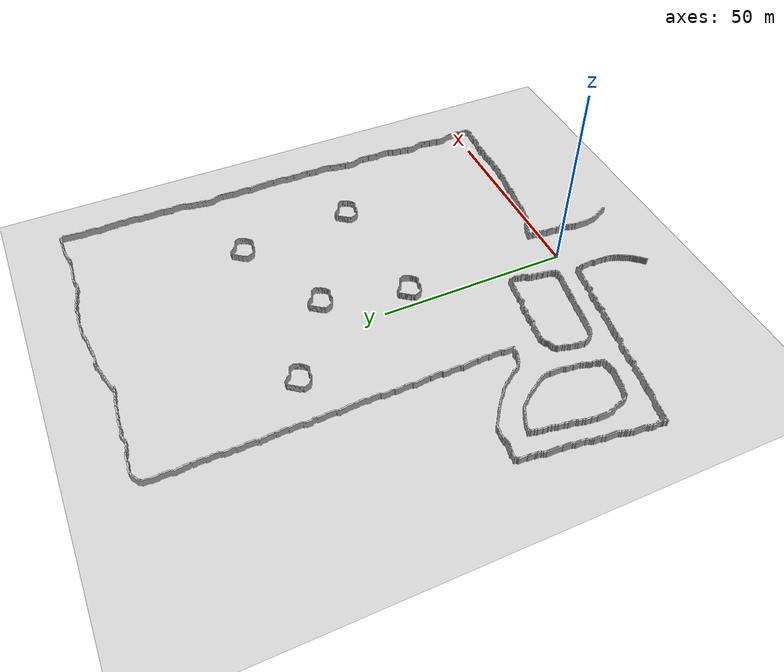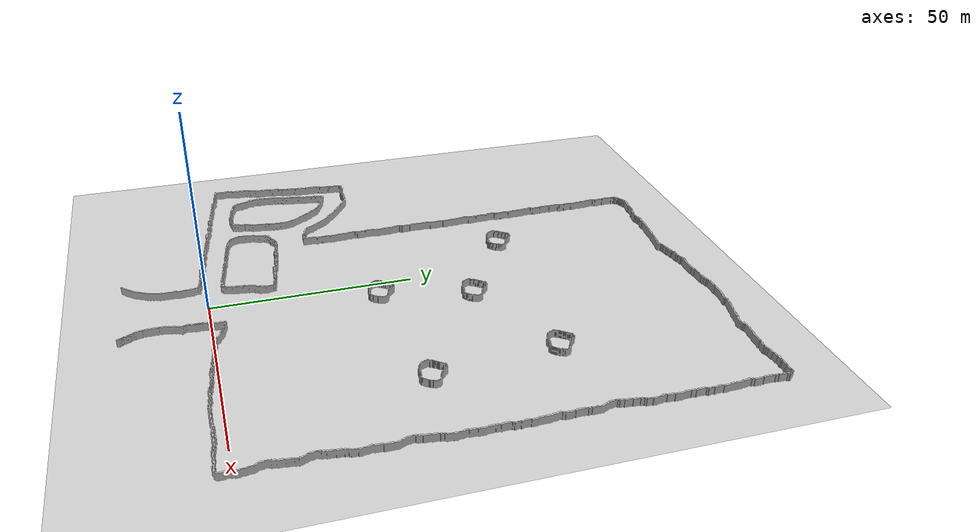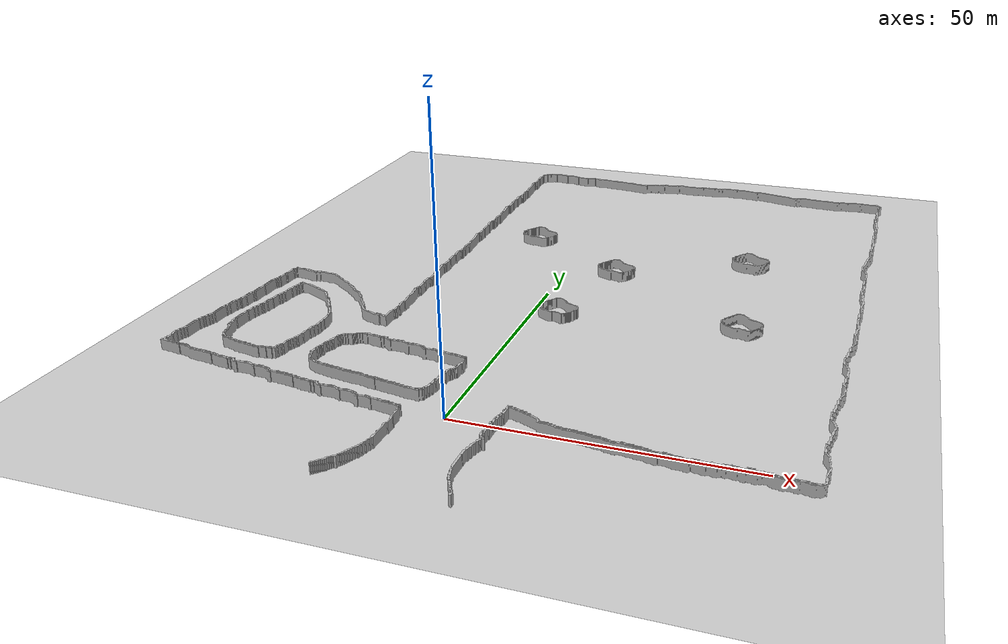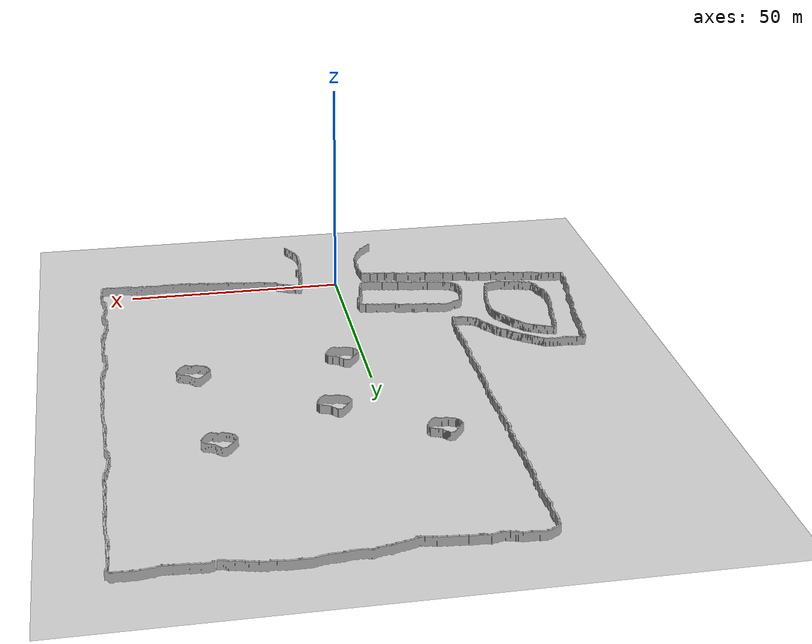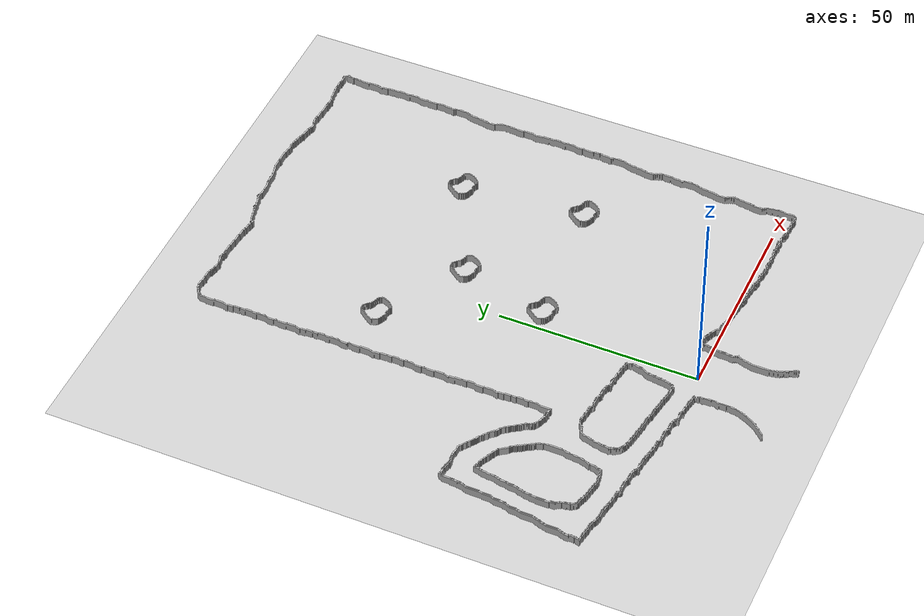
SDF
<?xml version="1.0" ?>
<sdf version="1.5">
  <world name="default">
    <!-- A global light source -->
    <include>
      <uri>model://sun</uri>
    </include>
    <!-- A ground plane -->
    <include>
      <uri>model://ground_plane</uri>
    </include>
    <!-- The lawn -->
    <include>
      <uri>model://mine_pillars_mesh</uri>
    </include>
  </world>
</sdf>

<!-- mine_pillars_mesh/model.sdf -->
<sdf version="1.4">
  <model name="map">
    <link name="link">
      <inertial>
        <mass>15</mass>
        <inertia>
          <ixx>0.0</ixx>
          <ixy>0.0</ixy>
          <ixz>0.0</ixz>
          <iyy>0.0</iyy>
          <iyz>0.0</iyz>
          <izz>0.0</izz>
        </inertia>
      </inertial>
      <collision name="collision">
        <pose>0 0 0 0 0 0</pose>
        <geometry>
          <mesh>
            <uri>model://mine_pillars_mesh/meshes/map.stl</uri>
          </mesh>
        </geometry>
      </collision>
      <visual name="visual">
        <pose>0 0 0 0 0 0</pose>
        <geometry>
          <mesh>
            <uri>model://mine_pillars_mesh/meshes/map.stl</uri>
          </mesh>
        </geometry>
      </visual>
    </link>
    <static>1</static>
  </model>
</sdf>
